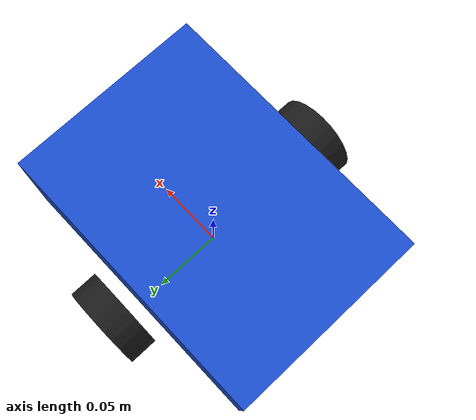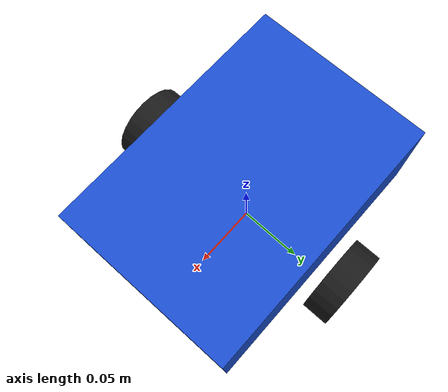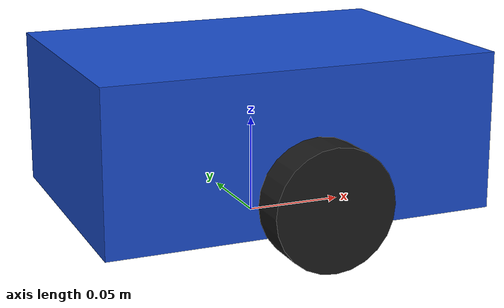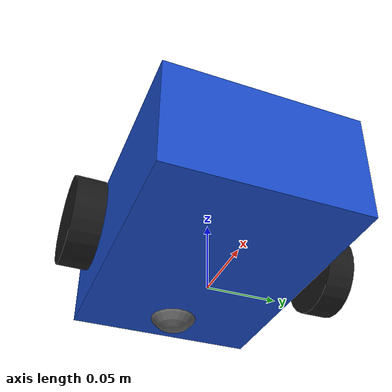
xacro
<?xml version="1.0"?>
<!--
  智慧社区 巡检机器人 (差分驱动)
  传感器对齐总决赛要求：1 x 360° 激光雷达 + 1 x 单目相机
  底盘由 gz-sim DiffDrive 插件驱动，odom -> base_footprint TF 由插件发布。
-->
<robot name="robot" xmlns:xacro="http://www.ros.org/wiki/xacro">

  <!-- ===== 尺寸/质量参数（省赛 4.2m 场地，缩小底盘以便通过 40cm 车道） ===== -->
  <xacro:property name="wheel_radius" value="0.03"/>
  <xacro:property name="wheel_width" value="0.02"/>
  <xacro:property name="wheel_separation" value="0.18"/>  <!-- 左右轮横向间距 -->
  <xacro:property name="base_length" value="0.20"/>
  <xacro:property name="base_width" value="0.14"/>
  <xacro:property name="base_height" value="0.08"/>
  <xacro:property name="caster_radius" value="0.02"/>

  <xacro:property name="chassis_mass" value="3.0"/>
  <xacro:property name="wheel_mass" value="0.2"/>

  <material name="chassis_blue"><color rgba="0.1 0.3 0.8 1.0"/></material>
  <material name="wheel_black"><color rgba="0.1 0.1 0.1 1.0"/></material>
  <material name="sensor_grey"><color rgba="0.4 0.4 0.4 1.0"/></material>

  <!-- ===== base_footprint（地面投影，供 Nav2/odom 使用） ===== -->
  <link name="base_footprint"/>

  <joint name="base_footprint_joint" type="fixed">
    <parent link="base_footprint"/>
    <child link="base_link"/>
    <origin xyz="0 0 ${wheel_radius}"/>
  </joint>

  <!-- ===== base_link（底盘，中心位于轮轴高度） ===== -->
  <link name="base_link">
    <visual>
      <!-- 底盘盒抬高 0.02，避免底部低于轮底导致车趴地、轮子悬空空转 -->
      <origin xyz="0 0 0.02"/>
      <geometry><box size="${base_length} ${base_width} ${base_height}"/></geometry>
      <material name="chassis_blue"/>
    </visual>
    <collision>
      <origin xyz="0 0 0.02"/>
      <geometry><box size="${base_length} ${base_width} ${base_height}"/></geometry>
    </collision>
    <inertial>
      <mass value="${chassis_mass}"/>
      <inertia
        ixx="${chassis_mass * (base_width*base_width + base_height*base_height) / 12}"
        ixy="0" ixz="0"
        iyy="${chassis_mass * (base_length*base_length + base_height*base_height) / 12}"
        iyz="0"
        izz="${chassis_mass * (base_length*base_length + base_width*base_width) / 12}"/>
    </inertial>
  </link>

  <!-- ===== 驱动轮（圆柱绕 Y 轴旋转） ===== -->
  <xacro:macro name="wheel" params="prefix reflect">
    <link name="${prefix}_wheel">
      <visual>
        <origin xyz="0 0 0" rpy="1.570796 0 0"/>
        <geometry><cylinder radius="${wheel_radius}" length="${wheel_width}"/></geometry>
        <material name="wheel_black"/>
      </visual>
      <collision>
        <origin xyz="0 0 0" rpy="1.570796 0 0"/>
        <geometry><cylinder radius="${wheel_radius}" length="${wheel_width}"/></geometry>
      </collision>
      <inertial>
        <mass value="${wheel_mass}"/>
        <inertia
          ixx="${wheel_mass * wheel_radius*wheel_radius / 2}"
          ixy="0" ixz="0"
          iyy="${wheel_mass * (3*wheel_radius*wheel_radius + wheel_width*wheel_width) / 12}"
          iyz="0"
          izz="${wheel_mass * (3*wheel_radius*wheel_radius + wheel_width*wheel_width) / 12}"/>
      </inertial>
    </link>

    <joint name="${prefix}_wheel_joint" type="continuous">
      <parent link="base_link"/>
      <child link="${prefix}_wheel"/>
      <origin xyz="0 ${reflect * wheel_separation / 2} 0"/>
      <axis xyz="0 1 0"/>
    </joint>
  </xacro:macro>

  <xacro:wheel prefix="left" reflect="1"/>
  <xacro:wheel prefix="right" reflect="-1"/>

  <!-- ===== 后置万向轮（低摩擦，保持平衡） ===== -->
  <link name="caster_link">
    <visual>
      <geometry><sphere radius="${caster_radius}"/></geometry>
      <material name="sensor_grey"/>
    </visual>
    <collision>
      <geometry><sphere radius="${caster_radius}"/></geometry>
    </collision>
    <inertial>
      <mass value="0.05"/>
      <inertia ixx="0.00001" ixy="0" ixz="0" iyy="0.00001" iyz="0" izz="0.00001"/>
    </inertial>
  </link>
  <joint name="caster_joint" type="fixed">
    <parent link="base_link"/>
    <child link="caster_link"/>
    <origin xyz="${-base_length/2 + 0.03} 0 ${-(wheel_radius - caster_radius)}"/>
  </joint>

  <!-- 低摩擦，避免转向时被后轮卡住 -->
  <gazebo reference="caster_link">
    <mu1>0.0</mu1>
    <mu2>0.0</mu2>
  </gazebo>

  <!-- ===== 激光雷达（360° 2D） ===== -->
  <!-- 注意：传感器 link 必须带 inertial，否则 URDF->SDF 转换会丢弃空 link，
       传感器被回退挂到根 link（base_footprint）。 -->
  <link name="lidar_link">
    <inertial>
      <mass value="0.001"/>
      <inertia ixx="0.000001" ixy="0" ixz="0" iyy="0.000001" iyz="0" izz="0.000001"/>
    </inertial>
  </link>
  <joint name="lidar_joint" type="fixed">
    <parent link="base_link"/>
    <child link="lidar_link"/>
    <origin xyz="0 0 ${base_height/2 + 0.02}"/>
  </joint>

  <!-- ===== 单目相机（前向） ===== -->
  <link name="camera_link">
    <inertial>
      <mass value="0.001"/>
      <inertia ixx="0.000001" ixy="0" ixz="0" iyy="0.000001" iyz="0" izz="0.000001"/>
    </inertial>
  </link>
  <joint name="camera_joint" type="fixed">
    <parent link="base_link"/>
    <child link="camera_link"/>
    <origin xyz="${base_length/2} 0 ${base_height/2 + 0.05}"/>
  </joint>

  <!-- ============================= Gazebo 插件 ============================= -->

  <!-- 差分驱动：订阅 cmd_vel 驱动轮子。
       自带的 odom/tf 帧名带 model 前缀（robot/odom），不方便对接 Nav2，
       所以把它的 odom/tf 重定向到不用的 topic，改用下面的 OdometryPublisher。 -->
  <gazebo>
    <plugin filename="gz-sim-diff-drive-system" name="gz::sim::systems::DiffDrive">
      <left_joint>left_wheel_joint</left_joint>
      <right_joint>right_wheel_joint</right_joint>
      <wheel_separation>${wheel_separation}</wheel_separation>
      <wheel_radius>${wheel_radius}</wheel_radius>
      <!-- 显式指定速度指令话题：部分 gz-sim 版本/机器上默认话题名不是
           /model/robot/cmd_vel，会导致 bridge 发进来的 cmd_vel 车不动 -->
      <topic>/model/robot/cmd_vel</topic>
      <odom_publish_frequency>50</odom_publish_frequency>
      <odom_topic>/model/robot/diffdrive_odom</odom_topic>
      <tf_topic>/model/robot/diffdrive_tf</tf_topic>
      <child_frame_id>base_footprint</child_frame_id>
    </plugin>
  </gazebo>

  <!-- 里程计 + odom->base_footprint TF（帧名干净：odom / base_footprint） -->
  <gazebo>
    <plugin filename="gz-sim-odometry-publisher-system"
            name="gz::sim::systems::OdometryPublisher">
      <odom_frame>odom</odom_frame>
      <robot_base_frame>base_footprint</robot_base_frame>
      <odom_topic>/model/robot/odometry</odom_topic>
      <tf_topic>/model/robot/tf</tf_topic>
      <odom_publish_frequency>50</odom_publish_frequency>
    </plugin>
  </gazebo>

  <!-- 关节状态（供可视化/调试） -->
  <gazebo>
    <plugin filename="gz-sim-joint-state-publisher-system"
            name="gz::sim::systems::JointStatePublisher"/>
  </gazebo>

  <!-- 360° 激光雷达 -->
  <gazebo reference="lidar_link">
    <sensor type="gpu_lidar" name="lidar">
      <update_rate>10</update_rate>
      <always_on>1</always_on>
      <ray>
        <scan>
          <horizontal>
            <samples>360</samples>
            <resolution>1</resolution>
            <min_angle>-3.14159</min_angle>
            <max_angle>3.14159</max_angle>
          </horizontal>
        </scan>
        <range>
          <min>0.1</min>
          <max>6</max>
          <resolution>0.01</resolution>
        </range>
      </ray>
      <visualize>false</visualize>
    </sensor>
  </gazebo>

  <!-- 单目相机 -->
  <gazebo reference="camera_link">
    <sensor type="camera" name="camera">
      <update_rate>30</update_rate>
      <camera>
        <horizontal_fov>1.745329</horizontal_fov>
        <image>
          <width>640</width>
          <height>480</height>
        </image>
        <clip>
          <near>0.05</near>
          <far>10</far>
        </clip>
      </camera>
      <always_on>1</always_on>
    </sensor>
  </gazebo>

</robot>
